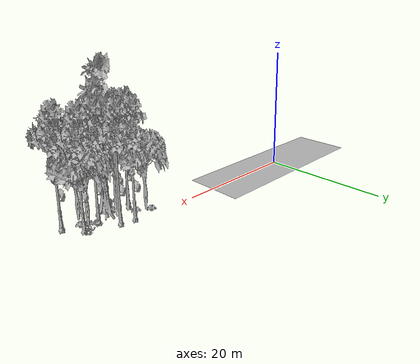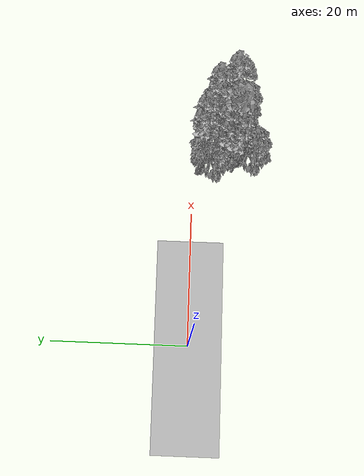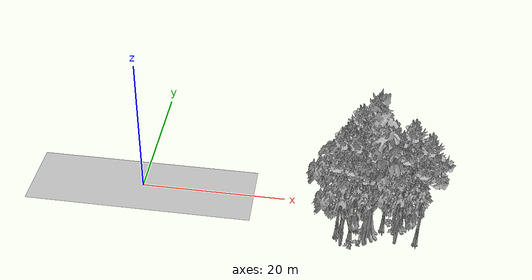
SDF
<sdf version="1.7">
 <world name="default">
  <model name="ground_plane">
   <static>1</static>
   <link name="link">
    <collision name="collision">
     <geometry><plane><normal>0 0 1</normal><size>100 100</size></plane></geometry>
     <surface><contact><ode><min_depth>0.01</min_depth><max_vel>0</max_vel></ode></contact></surface>
    </collision>
    <visual name="grass">
     <cast_shadows>0</cast_shadows>
     <geometry>
      <mesh>
       <scale>0.5814285714285714 0.18142857142857144 0.1</scale>
       <uri>file://grass_plane/meshes/grass_plane.dae</uri>
      </mesh>
     </geometry>
    </visual>
   </link>
  </model>
  <model name="Tree 4">
   <static>1</static>
   <pose>37.6744040516204 -5.781511116738173 0 1.57079 -0 0</pose>
   <link name="link">
    <collision name="collision">
     <geometry><mesh><scale>3.5 5 3.5</scale><uri>model://tree_9/meshes/tree_9.obj</uri></mesh></geometry>
    </collision>
    <visual name="visual">
     <geometry><mesh><scale>3.5 5 3.5</scale><uri>model://tree_9/meshes/tree_9.obj</uri></mesh></geometry>
    </visual>
   </link>
  </model>
  <model name="Tree 14">
   <static>1</static>
   <pose>34.90100354843085 -6.2940051640763635 0 1.57079 -0 0</pose>
   <link name="link">
    <collision name="collision">
     <geometry><mesh><scale>3.5 5 3.5</scale><uri>model://tree_2/meshes/tree_2.obj</uri></mesh></geometry>
    </collision>
    <visual name="visual">
     <geometry><mesh><scale>3.5 5 3.5</scale><uri>model://tree_2/meshes/tree_2.obj</uri></mesh></geometry>
    </visual>
   </link>
  </model>
  <model name="Tree 101">
   <static>1</static>
   <pose>34.676010023035914 -4.0979161640578035 0 1.57079 -0 0</pose>
   <link name="link">
    <collision name="collision">
     <geometry><mesh><scale>3.5 5 3.5</scale><uri>model://tree_2/meshes/tree_2.obj</uri></mesh></geometry>
    </collision>
    <visual name="visual">
     <geometry><mesh><scale>3.5 5 3.5</scale><uri>model://tree_2/meshes/tree_2.obj</uri></mesh></geometry>
    </visual>
   </link>
  </model>
  <model name="Tree 195">
   <static>1</static>
   <pose>29.373447980213328 -1.167737664488964 0 1.57079 -0 0</pose>
   <link name="link">
    <collision name="collision">
     <geometry><mesh><scale>3.5 5 3.5</scale><uri>model://tree_9/meshes/tree_9.obj</uri></mesh></geometry>
    </collision>
    <visual name="visual">
     <geometry><mesh><scale>3.5 5 3.5</scale><uri>model://tree_9/meshes/tree_9.obj</uri></mesh></geometry>
    </visual>
   </link>
  </model>
  <model name="Tree 206">
   <static>1</static>
   <pose>33.348431888280345 -3.9151596574455763 0 1.57079 -0 0</pose>
   <link name="link">
    <collision name="collision">
     <geometry><mesh><scale>3.5 5 3.5</scale><uri>model://tree_9/meshes/tree_9.obj</uri></mesh></geometry>
    </collision>
    <visual name="visual">
     <geometry><mesh><scale>3.5 5 3.5</scale><uri>model://tree_9/meshes/tree_9.obj</uri></mesh></geometry>
    </visual>
   </link>
  </model>
  <model name="Tree 214">
   <static>1</static>
   <pose>29.943871012004337 -4.459662411036675 0 1.57079 -0 0</pose>
   <link name="link">
    <collision name="collision">
     <geometry><mesh><scale>3.5 5 3.5</scale><uri>model://tree_9/meshes/tree_9.obj</uri></mesh></geometry>
    </collision>
    <visual name="visual">
     <geometry><mesh><scale>3.5 5 3.5</scale><uri>model://tree_9/meshes/tree_9.obj</uri></mesh></geometry>
    </visual>
   </link>
  </model>
  <model name="Tree 263">
   <static>1</static>
   <pose>27.37517048349342 -5.953224270462785 0 1.57079 -0 0</pose>
   <link name="link">
    <collision name="collision">
     <geometry><mesh><scale>3.5 5 3.5</scale><uri>model://tree_9/meshes/tree_9.obj</uri></mesh></geometry>
    </collision>
    <visual name="visual">
     <geometry><mesh><scale>3.5 5 3.5</scale><uri>model://tree_9/meshes/tree_9.obj</uri></mesh></geometry>
    </visual>
   </link>
  </model>
  <model name="Tree 299">
   <static>1</static>
   <pose>27.989288367015305 -4.875936185567365 0 1.57079 -0 0</pose>
   <link name="link">
    <collision name="collision">
     <geometry><mesh><scale>3.5 5 3.5</scale><uri>model://tree_9/meshes/tree_9.obj</uri></mesh></geometry>
    </collision>
    <visual name="visual">
     <geometry><mesh><scale>3.5 5 3.5</scale><uri>model://tree_9/meshes/tree_9.obj</uri></mesh></geometry>
    </visual>
   </link>
  </model>
  <model name="Tree 301">
   <static>1</static>
   <pose>27.918799349160395 -7.695368602530291 0 1.57079 -0 0</pose>
   <link name="link">
    <collision name="collision">
     <geometry><mesh><scale>3.5 5 3.5</scale><uri>model://tree_2/meshes/tree_2.obj</uri></mesh></geometry>
    </collision>
    <visual name="visual">
     <geometry><mesh><scale>3.5 5 3.5</scale><uri>model://tree_2/meshes/tree_2.obj</uri></mesh></geometry>
    </visual>
   </link>
  </model>
  <model name="Tree 305">
   <static>1</static>
   <pose>35.78259683481468 -3.3175504664219595 0 1.57079 -0 0</pose>
   <link name="link">
    <collision name="collision">
     <geometry><mesh><scale>3.5 5 3.5</scale><uri>model://tree_9/meshes/tree_9.obj</uri></mesh></geometry>
    </collision>
    <visual name="visual">
     <geometry><mesh><scale>3.5 5 3.5</scale><uri>model://tree_9/meshes/tree_9.obj</uri></mesh></geometry>
    </visual>
   </link>
  </model>
  <model name="Tree 346">
   <static>1</static>
   <pose>31.40607128564183 -1.5589622263490277 0 1.57079 -0 0</pose>
   <link name="link">
    <collision name="collision">
     <geometry><mesh><scale>3.5 5 3.5</scale><uri>model://tree_9/meshes/tree_9.obj</uri></mesh></geometry>
    </collision>
    <visual name="visual">
     <geometry><mesh><scale>3.5 5 3.5</scale><uri>model://tree_9/meshes/tree_9.obj</uri></mesh></geometry>
    </visual>
   </link>
  </model>
  <model name="Tree 356">
   <static>1</static>
   <pose>26.709727754624566 -2.2279892725827573 0 1.57079 -0 0</pose>
   <link name="link">
    <collision name="collision">
     <geometry><mesh><scale>3.5 5 3.5</scale><uri>model://tree_2/meshes/tree_2.obj</uri></mesh></geometry>
    </collision>
    <visual name="visual">
     <geometry><mesh><scale>3.5 5 3.5</scale><uri>model://tree_2/meshes/tree_2.obj</uri></mesh></geometry>
    </visual>
   </link>
  </model>
  <model name="Tree 393">
   <static>1</static>
   <pose>31.288796803569113 -5.340041084385339 0 1.57079 -0 0</pose>
   <link name="link">
    <collision name="collision">
     <geometry><mesh><scale>3.5 5 3.5</scale><uri>model://tree_4/meshes/tree_4.obj</uri></mesh></geometry>
    </collision>
    <visual name="visual">
     <geometry><mesh><scale>3.5 5 3.5</scale><uri>model://tree_4/meshes/tree_4.obj</uri></mesh></geometry>
    </visual>
   </link>
  </model>
  <model name="Tree 398">
   <static>1</static>
   <pose>29.139957406371124 -6.362198216935727 0 1.57079 -0 0</pose>
   <link name="link">
    <collision name="collision">
     <geometry><mesh><scale>3.5 5 3.5</scale><uri>model://tree_9/meshes/tree_9.obj</uri></mesh></geometry>
    </collision>
    <visual name="visual">
     <geometry><mesh><scale>3.5 5 3.5</scale><uri>model://tree_9/meshes/tree_9.obj</uri></mesh></geometry>
    </visual>
   </link>
  </model>
  <model name="Bush 6">
   <static>1</static>
   <pose>28.98893247231163 -7.75542081493927 0 1.57079 -0 0</pose>
   <link name="link">
    <collision name="collision">
     <geometry><mesh><scale>2 2 2</scale><uri>model://bush_2/meshes/bush_2.obj</uri></mesh></geometry>
     <surface><contact><collide_without_contact>false</collide_without_contact></contact></surface>
    </collision>
    <visual name="visual">
     <geometry><mesh><scale>2 2 2</scale><uri>model://bush_2/meshes/bush_2.obj</uri></mesh></geometry>
    </visual>
   </link>
  </model>
  <model name="Bush 51">
   <static>1</static>
   <pose>35.96745309177028 -4.105370570644917 0 1.57079 -0 0</pose>
   <link name="link">
    <collision name="collision">
     <geometry><mesh><scale>2 2 2</scale><uri>model://bush_3/meshes/bush_3.obj</uri></mesh></geometry>
     <surface><contact><collide_without_contact>false</collide_without_contact></contact></surface>
    </collision>
    <visual name="visual">
     <geometry><mesh><scale>2 2 2</scale><uri>model://bush_3/meshes/bush_3.obj</uri></mesh></geometry>
    </visual>
   </link>
  </model>
  <model name="Bush 87">
   <static>1</static>
   <pose>35.92231944816065 -1.599165594337812 0 1.57079 -0 0</pose>
   <link name="link">
    <collision name="collision">
     <geometry><mesh><scale>2 2 2</scale><uri>model://bush_4/meshes/bush_4.obj</uri></mesh></geometry>
     <surface><contact><collide_without_contact>false</collide_without_contact></contact></surface>
    </collision>
    <visual name="visual">
     <geometry><mesh><scale>2 2 2</scale><uri>model://bush_4/meshes/bush_4.obj</uri></mesh></geometry>
    </visual>
   </link>
  </model>
  <model name="Bush 143">
   <static>1</static>
   <pose>26.73705395645125 -1.14042099852049 0 1.57079 -0 0</pose>
   <link name="link">
    <collision name="collision">
     <geometry><mesh><scale>2 2 2</scale><uri>model://bush_3/meshes/bush_3.obj</uri></mesh></geometry>
     <surface><contact><collide_without_contact>false</collide_without_contact></contact></surface>
    </collision>
    <visual name="visual">
     <geometry><mesh><scale>2 2 2</scale><uri>model://bush_3/meshes/bush_3.obj</uri></mesh></geometry>
    </visual>
   </link>
  </model>
  <model name="Bush 186">
   <static>1</static>
   <pose>28.57468531574331 -2.266190120518786 0 1.57079 -0 0</pose>
   <link name="link">
    <collision name="collision">
     <geometry><mesh><scale>2 2 2</scale><uri>model://bush_3/meshes/bush_3.obj</uri></mesh></geometry>
     <surface><contact><collide_without_contact>false</collide_without_contact></contact></surface>
    </collision>
    <visual name="visual">
     <geometry><mesh><scale>2 2 2</scale><uri>model://bush_3/meshes/bush_3.obj</uri></mesh></geometry>
    </visual>
   </link>
  </model>
  <model name="Bush 187">
   <static>1</static>
   <pose>34.66498008161972 -4.373240898121566 0 1.57079 -0 0</pose>
   <link name="link">
    <collision name="collision">
     <geometry><mesh><scale>2 2 2</scale><uri>model://bush_2/meshes/bush_2.obj</uri></mesh></geometry>
     <surface><contact><collide_without_contact>false</collide_without_contact></contact></surface>
    </collision>
    <visual name="visual">
     <geometry><mesh><scale>2 2 2</scale><uri>model://bush_2/meshes/bush_2.obj</uri></mesh></geometry>
    </visual>
   </link>
  </model>
  <model name="Bush 252">
   <static>1</static>
   <pose>30.076736279491726 -7.064185762036784 0 1.57079 -0 0</pose>
   <link name="link">
    <collision name="collision">
     <geometry><mesh><scale>2 2 2</scale><uri>model://bush_2/meshes/bush_2.obj</uri></mesh></geometry>
     <surface><contact><collide_without_contact>false</collide_without_contact></contact></surface>
    </collision>
    <visual name="visual">
     <geometry><mesh><scale>2 2 2</scale><uri>model://bush_2/meshes/bush_2.obj</uri></mesh></geometry>
    </visual>
   </link>
  </model>
  <model name="Bush 254">
   <static>1</static>
   <pose>34.210193226858934 -2.905761649110911 0 1.57079 -0 0</pose>
   <link name="link">
    <collision name="collision">
     <geometry><mesh><scale>2 2 2</scale><uri>model://bush_3/meshes/bush_3.obj</uri></mesh></geometry>
     <surface><contact><collide_without_contact>false</collide_without_contact></contact></surface>
    </collision>
    <visual name="visual">
     <geometry><mesh><scale>2 2 2</scale><uri>model://bush_3/meshes/bush_3.obj</uri></mesh></geometry>
    </visual>
   </link>
  </model>
 </world>
</sdf>
